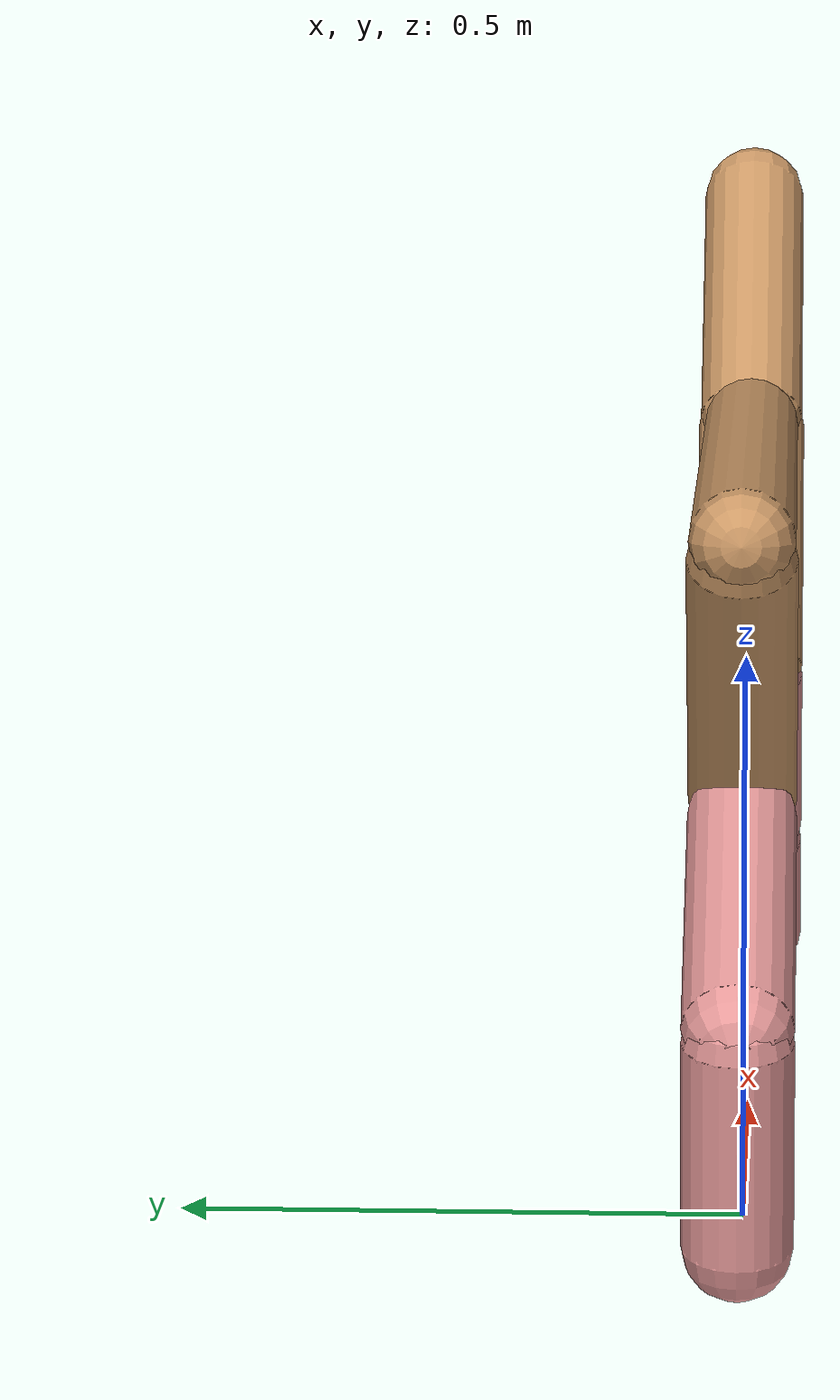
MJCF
<mujoco model="cheetah">
  <compiler angle="radian" coordinate="local" inertiafromgeom="true" settotalmass="14" />
  <default>
    <joint armature=".1" damping=".01" limited="true" solimplimit="0 .8 .03" solreflimit=".02 1" stiffness="8" />
    <geom conaffinity="0" condim="3" contype="1" friction="0.8 .1 .1" rgba="0.8 0.6 .4 1" solimp="0.0 0.8 0.01" solref="0.02 1" />
    <motor ctrllimited="true" ctrlrange="-1 1" />
  </default>
  <size nstack="300000" nuser_geom="1" />
  <option gravity="0 0 -9.81" timestep="0.01" />
  <worldbody>
    <body name="torso" pos="0.0 0.0 0.6618279318730457">
      <joint armature="0" axis="1 0 0" damping="0" limited="false" name="ignorex" pos="0 0 0" stiffness="0" type="slide" />
      <joint armature="0" axis="0 0 1" damping="0" limited="false" name="ignorez" pos="0 0 0" stiffness="0" type="slide" />
      <joint armature="0" axis="0 1 0" damping="0" limited="false" name="ignorey" pos="0 0 0" stiffness="0" type="hinge" />
      <geom fromto="-0.5 0.0 0.0 0.46892090416650906 0.0 0.0" name="torso" size="0.04323020140833385" type="capsule" />
      <geom axisangle="0 1 0 .87" name="head" pos="0.568920904166509 0.0 0.1" size="0.047390504817608814 0.15" type="capsule" />

      <body name="bthigh" pos="-.5 0 0">
        <joint axis="0 1 0" damping="6" name="bthigh" pos="0 0 0" range="-.52 1.05" stiffness="240" type="hinge" />
        <geom axisangle="0 1 0 -3.8" name="bthigh" pos="0.09714006906641587 0.0 -0.12628208978634062" size="0.045165518493040825 0.14030936450982343" type="capsule" />
        <body name="bshin" pos="0.15428013813283173 0.0 -0.24256417957268125">
          <joint axis="0 1 0" damping="4.5" name="bshin" pos="0 0 0" range="-.785 .785" stiffness="180" type="hinge" />
          <geom axisangle="0 1 0 -2.03" name="bshin" pos="-0.1356598980081209 0.0 -0.06782994900406045" rgba="0.9 0.6 0.6 1" size="0.045165518493040825 0.14514761845843802" type="capsule" />
          <body name="bfoot" pos="-0.2713197960162418 0.0 -0.1356598980081209">
            <joint axis="0 1 0" damping="3" name="bfoot" pos="0 0 0" range="-.4 .785" stiffness="120" type="hinge" />
            <geom axisangle="0 1 0 -.27" name="bfoot" pos="0.029101528053452248 0.0 -0.09409494070616228" rgba="0.9 0.6 0.6 1" size="0.045165518493040825 0.0909591742339545" type="capsule" />
            <inertial mass="10" />
          </body>
        </body>
      </body>
      <body name="fthigh" pos="0.468920904166509 0.0 0.0">
        <joint axis="0 1 0" damping="4.5" name="fthigh" pos="0 0 0" range="-1.5 0.8" stiffness="180" type="hinge" />
        <geom axisangle="0 1 0 .52" name="fthigh" pos="-0.06440653673858354 0.0 -0.11041120583757179" size="0.04927153566299692 0.12189901784767525" type="capsule" />
        <body name="fshin" pos="-0.12881307347716708 0.0 -0.22082241167514358">
          <joint axis="0 1 0" damping="3" name="fshin" pos="0 0 0" range="-1.2 1.1" stiffness="120" type="hinge" />
          <geom axisangle="0 1 0 -.6" name="fshin" pos="0.05981993127827382 0.0 -0.08282759715453297" rgba="0.9 0.6 0.6 1" size="0.04927153566299692 0.09715260069062838" type="capsule" />
          <body name="ffoot" pos="0.11963986255654764 0.0 -0.16565519430906595">
            <joint axis="0 1 0" damping="1.5" name="ffoot" pos="0 0 0" range="-3.1 -0.3" stiffness="60" type="hinge" />
            <geom axisangle="0 1 0 -.6" name="ffoot" pos="0.04184055770004985 0.0 -0.06508531197785533" rgba="0.9 0.6 0.6 1" size="0.04927153566299692 0.06415737781456592" type="capsule" />
            <inertial mass="10" />
          </body>
        </body>
      </body>
    </body>
  </worldbody>
  <actuator>
    <motor gear="120" joint="bthigh" name="bthigh" />
    <motor gear="90" joint="bshin" name="bshin" />
    <motor gear="60" joint="bfoot" name="bfoot" />
    <motor gear="120" joint="fthigh" name="fthigh" />
    <motor gear="60" joint="fshin" name="fshin" />
    <motor gear="30" joint="ffoot" name="ffoot" />
  </actuator>
</mujoco>
